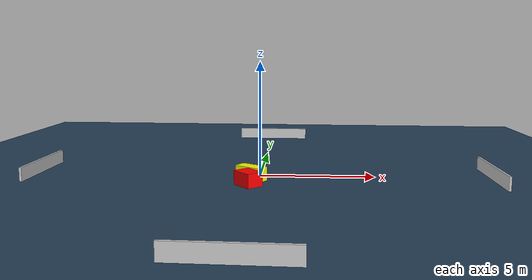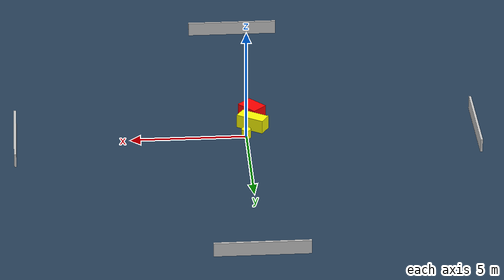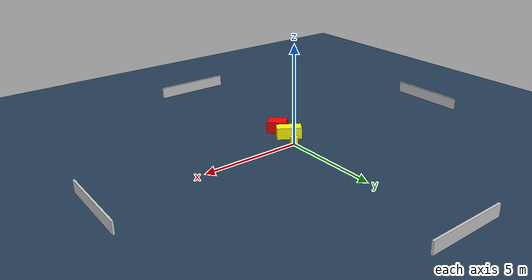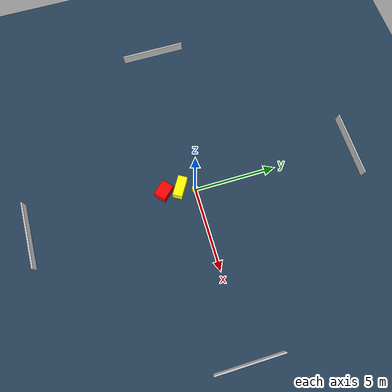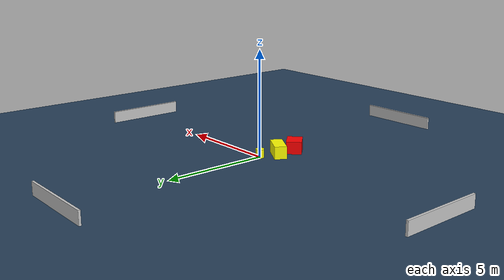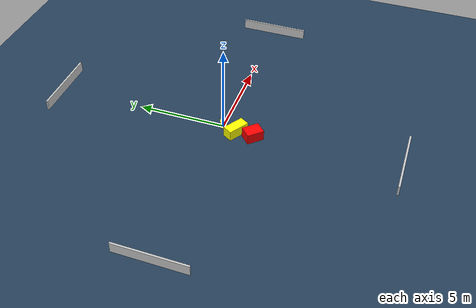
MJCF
<?xml version="1.0" ?>
<mujoco model="generated_environment">
  <option timestep="0.01" integrator="RK4" cone="elliptic"/>
  <default>
    <geom density="1"/>
  </default>
  <asset>
    <texture builtin="gradient" height="3072" name="skybox" rgb1="0.3 0.5 0.7" rgb2="0 0 0" type="skybox" width="512"/>
    <texture builtin="checker" height="300" name="groundplane" rgb1="0.2 0.3 0.4" rgb2="0.1 0.2 0.3" type="2d" width="300"/>
    <material name="groundplane" reflectance="0.2" texrepeat="5 5" texture="groundplane"/>
  </asset>
  <worldbody>
    <light dir="0 0 -1" directional="true" pos="0 0 1.5"/>
    <geom condim="3" friction="0.5 0.005 0.001" material="groundplane" name="floor" pos="0 0 0" size="0 0 0.05" type="plane"/>
    <body name="walls">
      <geom name="wall_1" condim="4" pos="-10.0 0.0 0.3" rgba="0.800000011920929 0.800000011920929 0.800000011920929 1.0" size="0.05 2.0 0.3" type="box"/>
      <geom name="wall_2" condim="4" pos="10.0 0.0 0.3" rgba="0.800000011920929 0.800000011920929 0.800000011920929 1.0" size="0.05 2.0 0.3" type="box"/>
      <geom name="wall_3" condim="4" pos="0.0 -10.0 0.3" rgba="0.800000011920929 0.800000011920929 0.800000011920929 1.0" size="2.0 0.05 0.3" type="box"/>
      <geom name="wall_4" condim="4" pos="0.0 10.0 0.3" rgba="0.800000011920929 0.800000011920929 0.800000011920929 1.0" size="2.0 0.05 0.3" type="box"/>
    </body>
    <body name="robot">
      <joint name="joint_x" type="slide" pos="0 0 0" axis="1 0 0"/>
      <joint name="joint_y" type="slide" pos="0 0 0" axis="0 1 0"/>
      <geom name="robot" type="cylinder" pos="0.0 0.0 0.2" size="0.2 0.2 0.0" mass="5.0" friction="1.0 0.005 0.0001" condim="4" rgba="1.0 1.0 0.0 1.0"/>
    </body>
    <body name="obstacle_1_movable">
      <geom name="obstacle_1_movable" condim="4" pos="-0.3284572413460974 -0.8412894886737735 0.3" euler="0 0 148.24543198619656" friction="0.0 0.005 0.001" rgba="1.0 1.0 0.0 1.0" size="0.6274215056332948 0.2893770864225051 0.3" type="box" mass="0.1"/>
      <joint type="free"/>
    </body>
    <body name="obstacle_2_static">
      <geom name="obstacle_2_static" condim="4" pos="-0.3621013351543667 -1.8348281381531288 0.3" euler="0 0 312.9604949876005" friction="0.0 0.005 0.001" rgba="1.0 0.0 0.0 1.0" size="0.48869664396576984 0.3685903254641816 0.3" type="box"/>
    </body>
  </worldbody>
  <actuator>
    <motor name="actuator_x" joint="joint_x" gear="1" ctrlrange="-1 1"/>
    <motor name="actuator_y" joint="joint_y" gear="1" ctrlrange="-1 1"/>
  </actuator>
</mujoco>
